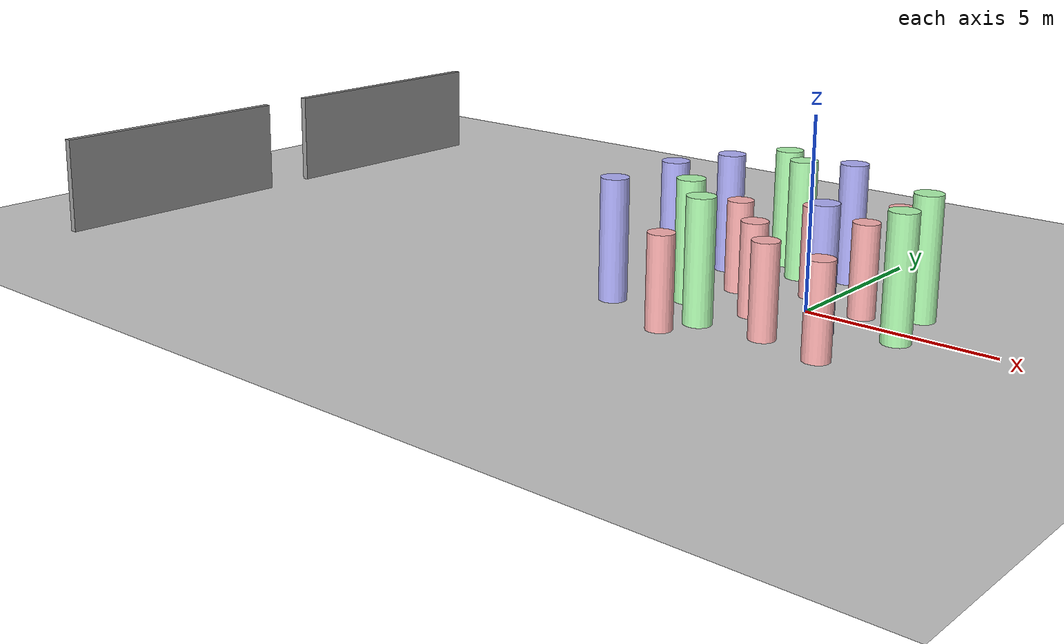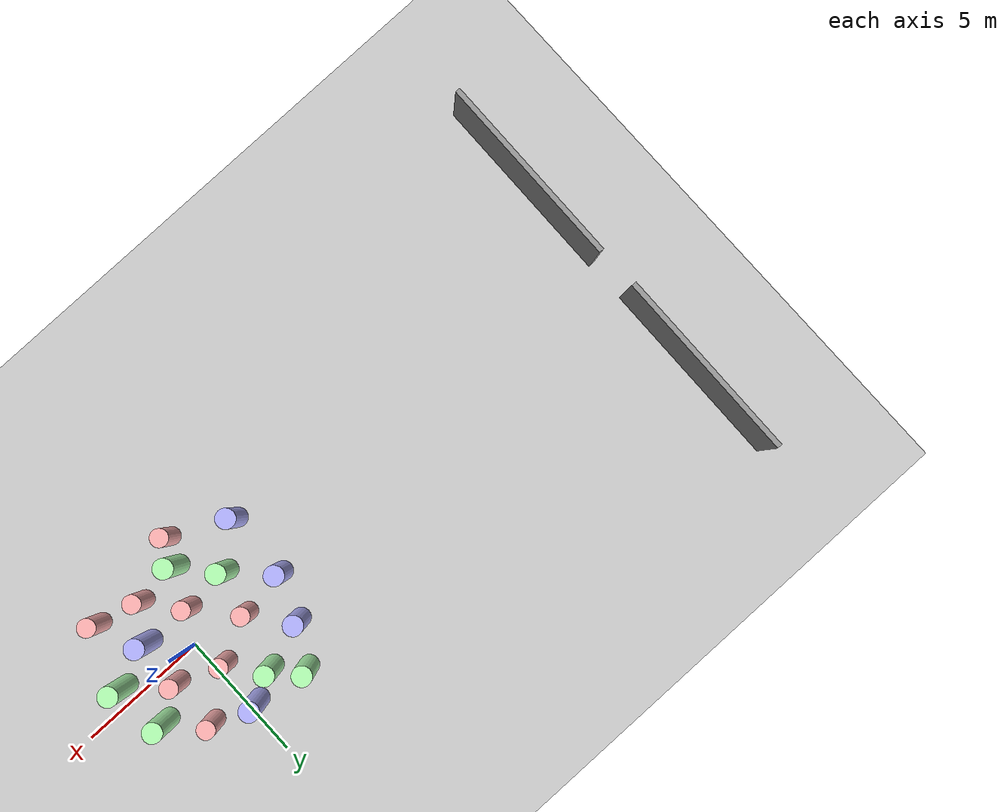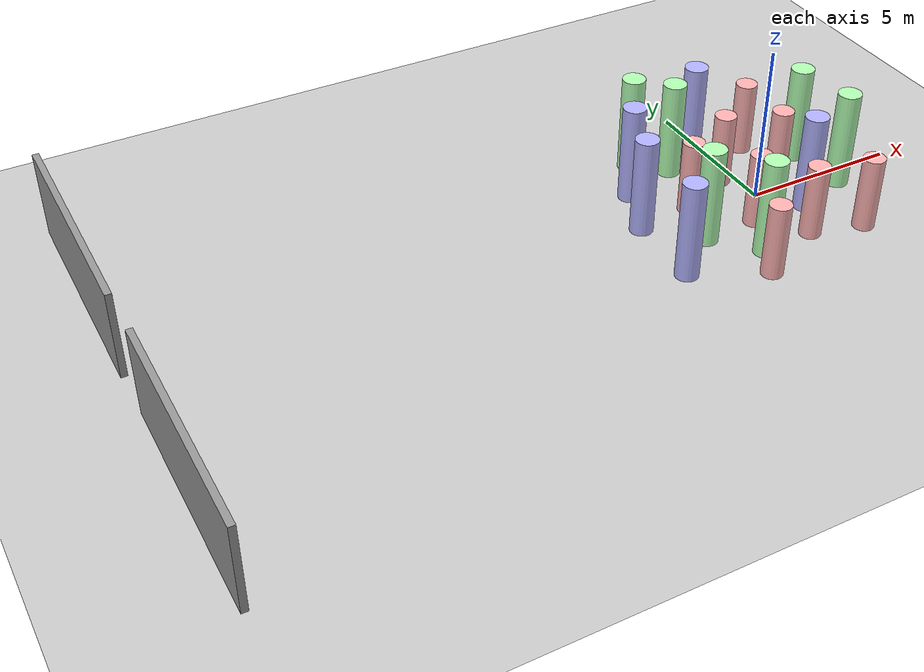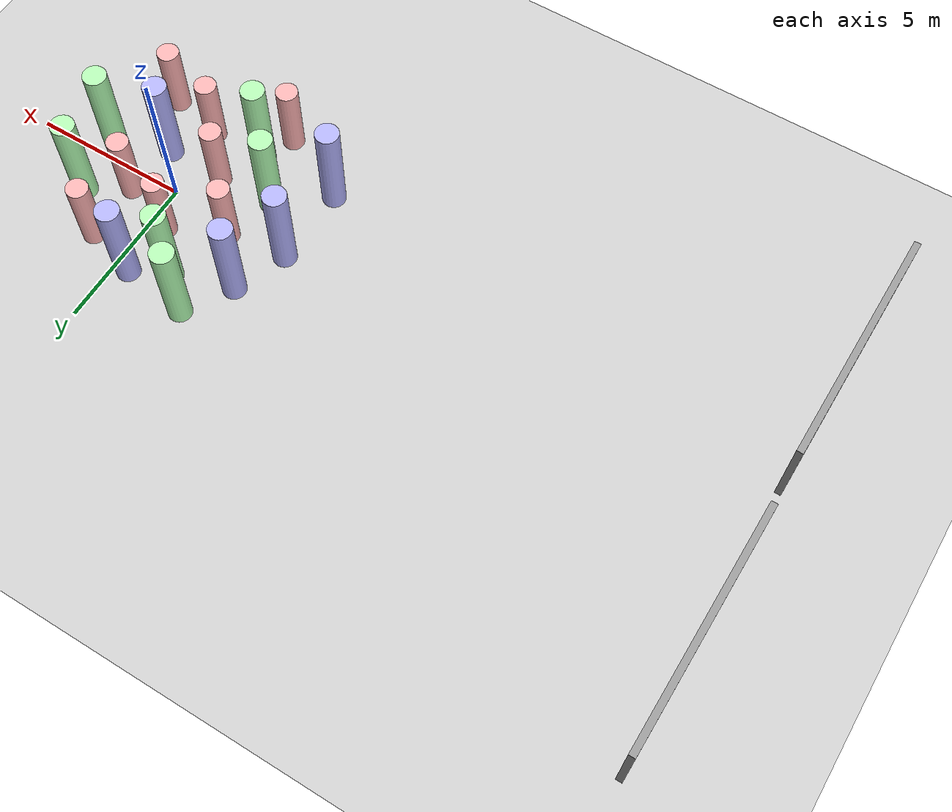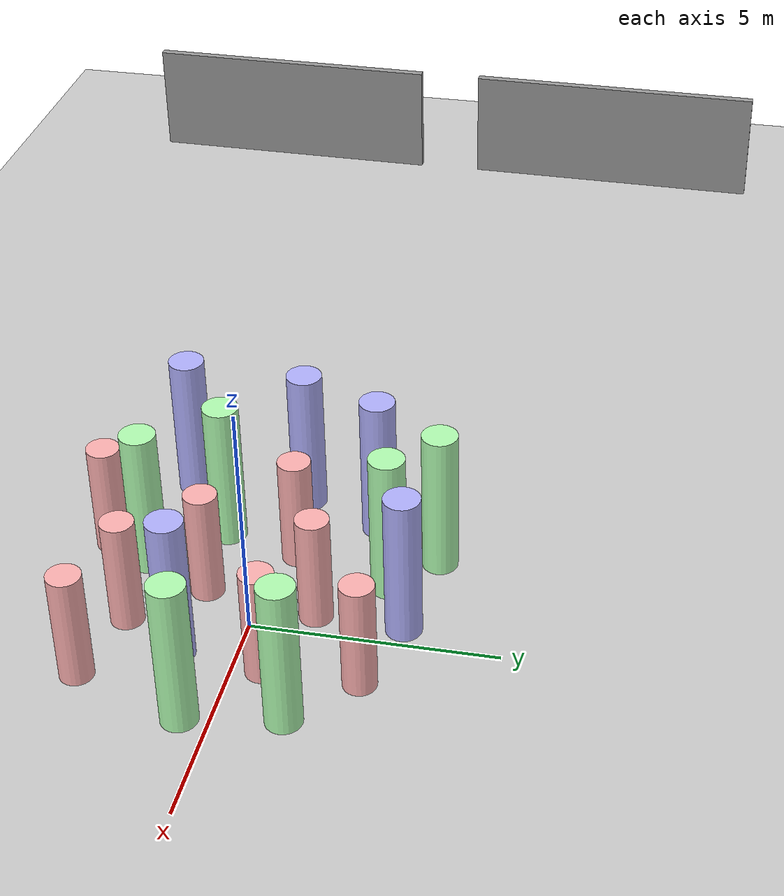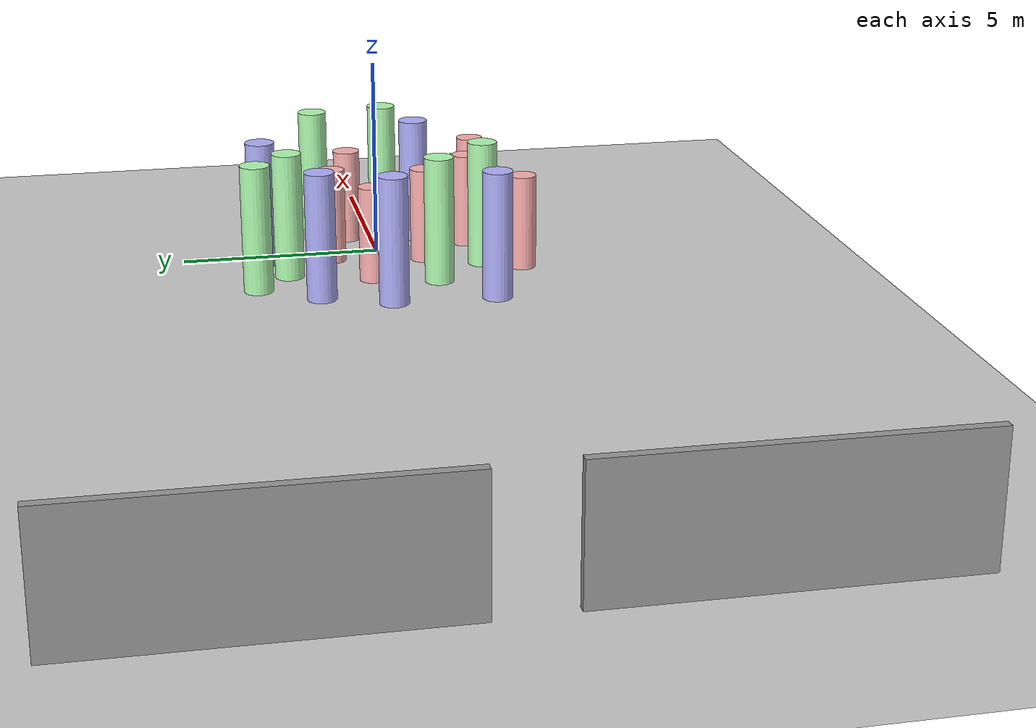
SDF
<sdf version="1.6">
 <world name="default">
  <plugin name="ros_interface_plugin" filename="librotors_gazebo_ros_interface_plugin.so"/>
  <model name="ground_plane">
   <static>1</static>
   <link name="link">
    <collision name="collision">
     <geometry><plane><normal>0 0 1</normal><size>100 100</size></plane></geometry>
     <surface><friction><ode><mu>100</mu><mu2>50</mu2></ode></friction></surface>
    </collision>
    <visual name="visual">
     <cast_shadows>0</cast_shadows>
     <geometry><plane><normal>0 0 1</normal><size>100 100</size></plane></geometry>
     <material>
      <script><uri>file://media/materials/scripts/gazebo.material</uri><name>Gazebo/Grey</name></script>
     </material>
    </visual>
   </link>
  </model>
  <light name="sun" type="directional">
   <pose>0 0 10 0 -0 0</pose>
   <diffuse>0.8 0.8 0.8 1</diffuse>
   <specular>0.2 0.2 0.2 1</specular>
   <attenuation>
    <range>1000</range>
    <constant>0.9</constant>
    <linear>0.01</linear>
    <quadratic>0.001</quadratic>
   </attenuation>
   <direction>-0.5 0.1 -0.9</direction>
  </light>
  <plugin name="ros_interface_plugin" filename="librotors_gazebo_ros_interface_plugin.so"/>
  <spherical_coordinates>
   <surface_model>EARTH_WGS84</surface_model>
   <latitude_deg>47.3667</latitude_deg>
   <longitude_deg>8.55</longitude_deg>
   <elevation>500</elevation>
   <heading_deg>0</heading_deg>
  </spherical_coordinates>
  <physics name="default_physics" default="0" type="ode">
   <ode>
    <solver>
     <type>quick</type>
     <iters>1000</iters>
     <sor>1.3</sor>
     <use_dynamic_moi_rescaling>0</use_dynamic_moi_rescaling>
    </solver>
    <constraints>
     <cfm>0</cfm>
     <erp>0.2</erp>
     <contact_max_correcting_vel>100</contact_max_correcting_vel>
     <contact_surface_layer>0.001</contact_surface_layer>
    </constraints>
   </ode>
   <max_step_size>0.01</max_step_size>
   <real_time_factor>1</real_time_factor>
   <real_time_update_rate>100</real_time_update_rate>
  </physics>
  <gravity>0 0 -9.8</gravity>
  <magnetic_field>6e-06 2.3e-05 -4.2e-05</magnetic_field>
  <atmosphere type="adiabatic"/>
  <scene><ambient>0.4 0.4 0.4 1</ambient><background>0.7 0.7 0.7 1</background><shadows>1</shadows></scene>
  <model name="unit_cylinder_blue">
   <link name="link_1">
    <pose>0.746146 -0.350774 -0.71216 0 0 -0.000199</pose>
    <inertial>
     <mass>1.76162</mass>
     <inertia><ixx>1.57891</ixx><ixy>0</ixy><ixz>0</ixz><iyy>1.57891</iyy><iyz>0</iyz><izz>0.120606</izz></inertia>
    </inertial>
    <visual name="visual">
     <geometry><cylinder><radius>0.370036</radius><length>3.2163</length></cylinder></geometry>
     <material>
      <lighting>1</lighting>
      <script><uri>file://media/materials/scripts/gazebo.material</uri><name>Gazebo/Grey</name></script>
      <ambient>0.3 0.3 1 1</ambient>
      <diffuse>0.7 0.7 1 1</diffuse>
      <specular>0 0 1 1</specular>
      <emissive>0 0 1 1</emissive>
      <shader type="vertex"><normal_map>__default__</normal_map></shader>
     </material>
    </visual>
    <collision name="collision">
     <geometry><cylinder><radius>0.370036</radius><length>3.21631</length></cylinder></geometry>
     <surface>
      <friction>
       <ode><mu>1</mu><mu2>1</mu2><fdir1>0 0 0</fdir1><slip1>0</slip1><slip2>0</slip2></ode>
       <torsional>
        <coefficient>1</coefficient>
        <patch_radius>0</patch_radius>
        <surface_radius>0</surface_radius>
        <use_patch_radius>1</use_patch_radius>
        <ode><slip>0</slip></ode>
       </torsional>
      </friction>
      <bounce><restitution_coefficient>0</restitution_coefficient><threshold>1e+06</threshold></bounce>
      <contact>
       <collide_without_contact>0</collide_without_contact>
       <collide_without_contact_bitmask>1</collide_without_contact_bitmask>
       <collide_bitmask>1</collide_bitmask>
       <ode>
        <soft_cfm>0</soft_cfm>
        <soft_erp>0.2</soft_erp>
        <kp>1e+13</kp>
        <kd>1</kd>
        <max_vel>0.01</max_vel>
        <min_depth>0</min_depth>
       </ode>
       <bullet>
        <split_impulse>1</split_impulse>
        <split_impulse_penetration_threshold>-0.01</split_impulse_penetration_threshold>
        <soft_cfm>0</soft_cfm>
        <soft_erp>0.2</soft_erp>
        <kp>1e+13</kp>
        <kd>1</kd>
       </bullet>
      </contact>
     </surface>
    </collision>
   </link>
   <static>0</static>
   <pose>-5.03358 -2.23329 2.31943 0 -0 0.261055</pose>
  </model>
  <model name="unit_cylinder_red">
   <link name="link">
    <inertial>
     <mass>1</mass>
     <inertia><ixx>0.145833</ixx><ixy>0</ixy><ixz>0</ixz><iyy>0.145833</iyy><iyz>0</iyz><izz>0.125</izz></inertia>
    </inertial>
    <visual name="visual">
     <geometry><cylinder><radius>0.342753</radius><length>2.42433</length></cylinder></geometry>
     <material>
      <script><name>Gazebo/Grey</name><uri>file://media/materials/scripts/gazebo.material</uri></script>
      <ambient>1 0.3 0.3 1</ambient>
      <diffuse>1 0.7 0.7 1</diffuse>
      <specular>1 0.01 0.01 1</specular>
      <emissive>1 0 0 1</emissive>
      <shader type="vertex"><normal_map>__default__</normal_map></shader>
     </material>
    </visual>
    <collision name="collision">
     <geometry><cylinder><radius>0.342753</radius><length>2.42433</length></cylinder></geometry>
     <surface>
      <friction>
       <ode><mu>1</mu><mu2>1</mu2><fdir1>0 0 0</fdir1><slip1>0</slip1><slip2>0</slip2></ode>
       <torsional>
        <coefficient>1</coefficient>
        <patch_radius>0</patch_radius>
        <surface_radius>0</surface_radius>
        <use_patch_radius>1</use_patch_radius>
        <ode><slip>0</slip></ode>
       </torsional>
      </friction>
      <bounce><restitution_coefficient>0</restitution_coefficient><threshold>1e+06</threshold></bounce>
      <contact>
       <collide_without_contact>0</collide_without_contact>
       <collide_without_contact_bitmask>1</collide_without_contact_bitmask>
       <collide_bitmask>1</collide_bitmask>
       <ode>
        <soft_cfm>0</soft_cfm>
        <soft_erp>0.2</soft_erp>
        <kp>1e+13</kp>
        <kd>1</kd>
        <max_vel>0.01</max_vel>
        <min_depth>0</min_depth>
       </ode>
       <bullet>
        <split_impulse>1</split_impulse>
        <split_impulse_penetration_threshold>-0.01</split_impulse_penetration_threshold>
        <soft_cfm>0</soft_cfm>
        <soft_erp>0.2</soft_erp>
        <kp>1e+13</kp>
        <kd>1</kd>
       </bullet>
      </contact>
     </surface>
    </collision>
   </link>
   <static>0</static>
   <pose>1.92474 -2.85136 1.21128 0 -0 0.046407</pose>
  </model>
  <model name="grey_wall_clone_6_clone_1_clone_0">
   <static>1</static>
   <link name="link">
    <pose>0 0 1.4 0 -0 0</pose>
    <collision name="collision"><geometry><box><size>7.5 0.2 2.8</size></box></geometry></collision>
    <visual name="visual">
     <cast_shadows>0</cast_shadows>
     <geometry><box><size>7.5 0.2 2.8</size></box></geometry>
     <material>
      <script>
       <uri>model://grey_wall/materials/scripts</uri>
       <uri>model://grey_wall/materials/textures</uri>
       <name>vrc/grey_wall</name>
      </script>
     </material>
    </visual>
   </link>
   <pose>-19.9684 4.75312 0 0 -0 1.55927</pose>
  </model>
  <model name="grey_wall_clone_6_clone_1_clone_1">
   <static>1</static>
   <link name="link">
    <pose>0 0 1.4 0 -0 0</pose>
    <collision name="collision"><geometry><box><size>7.5 0.2 2.8</size></box></geometry></collision>
    <visual name="visual">
     <cast_shadows>0</cast_shadows>
     <geometry><box><size>7.5 0.2 2.8</size></box></geometry>
     <material>
      <script>
       <uri>model://grey_wall/materials/scripts</uri>
       <uri>model://grey_wall/materials/textures</uri>
       <name>vrc/grey_wall</name>
      </script>
     </material>
    </visual>
   </link>
   <pose>-20.0078 -4.33424 0 0 -0 1.55927</pose>
  </model>
  <model name="unit_cylinder_red_clone_5_clone">
   <link name="link">
    <inertial>
     <mass>1</mass>
     <inertia><ixx>0.145833</ixx><ixy>0</ixy><ixz>0</ixz><iyy>0.145833</iyy><iyz>0</iyz><izz>0.125</izz></inertia>
    </inertial>
    <visual name="visual">
     <geometry><cylinder><radius>0.342753</radius><length>2.42433</length></cylinder></geometry>
     <material>
      <script><name>Gazebo/Grey</name><uri>file://media/materials/scripts/gazebo.material</uri></script>
      <ambient>1 0.3 0.3 1</ambient>
      <diffuse>1 0.7 0.7 1</diffuse>
      <specular>1 0.01 0.01 1</specular>
      <emissive>1 0 0 1</emissive>
      <shader type="vertex"><normal_map>__default__</normal_map></shader>
     </material>
    </visual>
    <collision name="collision">
     <geometry><cylinder><radius>0.342753</radius><length>2.42433</length></cylinder></geometry>
     <surface>
      <friction>
       <ode><mu>1</mu><mu2>1</mu2><fdir1>0 0 0</fdir1><slip1>0</slip1><slip2>0</slip2></ode>
       <torsional>
        <coefficient>1</coefficient>
        <patch_radius>0</patch_radius>
        <surface_radius>0</surface_radius>
        <use_patch_radius>1</use_patch_radius>
        <ode><slip>0</slip></ode>
       </torsional>
      </friction>
      <bounce><restitution_coefficient>0</restitution_coefficient><threshold>1e+06</threshold></bounce>
      <contact>
       <collide_without_contact>0</collide_without_contact>
       <collide_without_contact_bitmask>1</collide_without_contact_bitmask>
       <collide_bitmask>1</collide_bitmask>
       <ode>
        <soft_cfm>0</soft_cfm>
        <soft_erp>0.2</soft_erp>
        <kp>1e+13</kp>
        <kd>1</kd>
        <max_vel>0.01</max_vel>
        <min_depth>0</min_depth>
       </ode>
       <bullet>
        <split_impulse>1</split_impulse>
        <split_impulse_penetration_threshold>-0.01</split_impulse_penetration_threshold>
        <soft_cfm>0</soft_cfm>
        <soft_erp>0.2</soft_erp>
        <kp>1e+13</kp>
        <kd>1</kd>
       </bullet>
      </contact>
     </surface>
    </collision>
   </link>
   <static>0</static>
   <pose>-1.98438 -3.48582 1.21128 0 -0 0.046407</pose>
  </model>
  <model name="unit_cylinder_green_clone_1_clone_5_clone_0">
   <link name="link_1">
    <pose>0.746146 -0.350774 -0.71216 0 0 -0.000199</pose>
    <inertial>
     <mass>1.76162</mass>
     <inertia><ixx>1.57891</ixx><ixy>0</ixy><ixz>0</ixz><iyy>1.57891</iyy><iyz>0</iyz><izz>0.120606</izz></inertia>
    </inertial>
    <visual name="visual">
     <geometry><cylinder><radius>0.370036</radius><length>3.2163</length></cylinder></geometry>
     <material>
      <lighting>1</lighting>
      <script><uri>file://media/materials/scripts/gazebo.material</uri><name>Gazebo/Grey</name></script>
      <ambient>0.3 1 0.3 1</ambient>
      <diffuse>0.7 1 0.7 1</diffuse>
      <specular>0.01 1 0.01 1</specular>
      <emissive>0 1 0 1</emissive>
      <shader type="vertex"><normal_map>__default__</normal_map></shader>
     </material>
    </visual>
    <collision name="collision">
     <geometry><cylinder><radius>0.370036</radius><length>3.21631</length></cylinder></geometry>
     <surface>
      <friction>
       <ode><mu>1</mu><mu2>1</mu2><fdir1>0 0 0</fdir1><slip1>0</slip1><slip2>0</slip2></ode>
       <torsional>
        <coefficient>1</coefficient>
        <patch_radius>0</patch_radius>
        <surface_radius>0</surface_radius>
        <use_patch_radius>1</use_patch_radius>
        <ode><slip>0</slip></ode>
       </torsional>
      </friction>
      <bounce><restitution_coefficient>0</restitution_coefficient><threshold>1e+06</threshold></bounce>
      <contact>
       <collide_without_contact>0</collide_without_contact>
       <collide_without_contact_bitmask>1</collide_without_contact_bitmask>
       <collide_bitmask>1</collide_bitmask>
       <ode>
        <soft_cfm>0</soft_cfm>
        <soft_erp>0.2</soft_erp>
        <kp>1e+13</kp>
        <kd>1</kd>
        <max_vel>0.01</max_vel>
        <min_depth>0</min_depth>
       </ode>
       <bullet>
        <split_impulse>1</split_impulse>
        <split_impulse_penetration_threshold>-0.01</split_impulse_penetration_threshold>
        <soft_cfm>0</soft_cfm>
        <soft_erp>0.2</soft_erp>
        <kp>1e+13</kp>
        <kd>1</kd>
       </bullet>
      </contact>
     </surface>
    </collision>
   </link>
   <static>0</static>
   <pose>-3.33801 3.66508 2.31943 0 0 -0.004811</pose>
  </model>
  <model name="unit_cylinder_green_clone_1_clone_5_clone_1">
   <link name="link_1">
    <pose>0.746146 -0.350774 -0.71216 0 0 -0.000199</pose>
    <inertial>
     <mass>1.76162</mass>
     <inertia><ixx>1.57891</ixx><ixy>0</ixy><ixz>0</ixz><iyy>1.57891</iyy><iyz>0</iyz><izz>0.120606</izz></inertia>
    </inertial>
    <visual name="visual">
     <geometry><cylinder><radius>0.370036</radius><length>3.2163</length></cylinder></geometry>
     <material>
      <lighting>1</lighting>
      <script><uri>file://media/materials/scripts/gazebo.material</uri><name>Gazebo/Grey</name></script>
      <ambient>0.3 1 0.3 1</ambient>
      <diffuse>0.7 1 0.7 1</diffuse>
      <specular>0.01 1 0.01 1</specular>
      <emissive>0 1 0 1</emissive>
      <shader type="vertex"><normal_map>__default__</normal_map></shader>
     </material>
    </visual>
    <collision name="collision">
     <geometry><cylinder><radius>0.370036</radius><length>3.21631</length></cylinder></geometry>
     <surface>
      <friction>
       <ode><mu>1</mu><mu2>1</mu2><fdir1>0 0 0</fdir1><slip1>0</slip1><slip2>0</slip2></ode>
       <torsional>
        <coefficient>1</coefficient>
        <patch_radius>0</patch_radius>
        <surface_radius>0</surface_radius>
        <use_patch_radius>1</use_patch_radius>
        <ode><slip>0</slip></ode>
       </torsional>
      </friction>
      <bounce><restitution_coefficient>0</restitution_coefficient><threshold>1e+06</threshold></bounce>
      <contact>
       <collide_without_contact>0</collide_without_contact>
       <collide_without_contact_bitmask>1</collide_without_contact_bitmask>
       <collide_bitmask>1</collide_bitmask>
       <ode>
        <soft_cfm>0</soft_cfm>
        <soft_erp>0.2</soft_erp>
        <kp>1e+13</kp>
        <kd>1</kd>
        <max_vel>0.01</max_vel>
        <min_depth>0</min_depth>
       </ode>
       <bullet>
        <split_impulse>1</split_impulse>
        <split_impulse_penetration_threshold>-0.01</split_impulse_penetration_threshold>
        <soft_cfm>0</soft_cfm>
        <soft_erp>0.2</soft_erp>
        <kp>1e+13</kp>
        <kd>1</kd>
       </bullet>
      </contact>
     </surface>
    </collision>
   </link>
   <static>0</static>
   <pose>1.97627 -0.21093 2.31943 0 0 -0.004811</pose>
  </model>
  <model name="unit_cylinder_blue_clone_4_clone_clone_clone_clone">
   <link name="link_1">
    <pose>0.746146 -0.350774 -0.71216 0 0 -0.000199</pose>
    <inertial>
     <mass>1.76162</mass>
     <inertia><ixx>1.57891</ixx><ixy>0</ixy><ixz>0</ixz><iyy>1.57891</iyy><iyz>0</iyz><izz>0.120606</izz></inertia>
    </inertial>
    <visual name="visual">
     <geometry><cylinder><radius>0.370036</radius><length>3.2163</length></cylinder></geometry>
     <material>
      <lighting>1</lighting>
      <script><uri>file://media/materials/scripts/gazebo.material</uri><name>Gazebo/Grey</name></script>
      <ambient>0.3 0.3 1 1</ambient>
      <diffuse>0.7 0.7 1 1</diffuse>
      <specular>0 0 1 1</specular>
      <emissive>0 0 1 1</emissive>
      <shader type="vertex"><normal_map>__default__</normal_map></shader>
     </material>
    </visual>
    <collision name="collision">
     <geometry><cylinder><radius>0.370036</radius><length>3.21631</length></cylinder></geometry>
     <surface>
      <friction>
       <ode><mu>1</mu><mu2>1</mu2><fdir1>0 0 0</fdir1><slip1>0</slip1><slip2>0</slip2></ode>
       <torsional>
        <coefficient>1</coefficient>
        <patch_radius>0</patch_radius>
        <surface_radius>0</surface_radius>
        <use_patch_radius>1</use_patch_radius>
        <ode><slip>0</slip></ode>
       </torsional>
      </friction>
      <bounce><restitution_coefficient>0</restitution_coefficient><threshold>1e+06</threshold></bounce>
      <contact>
       <collide_without_contact>0</collide_without_contact>
       <collide_without_contact_bitmask>1</collide_without_contact_bitmask>
       <collide_bitmask>1</collide_bitmask>
       <ode>
        <soft_cfm>0</soft_cfm>
        <soft_erp>0.2</soft_erp>
        <kp>1e+13</kp>
        <kd>1</kd>
        <max_vel>0.01</max_vel>
        <min_depth>0</min_depth>
       </ode>
       <bullet>
        <split_impulse>1</split_impulse>
        <split_impulse_penetration_threshold>-0.01</split_impulse_penetration_threshold>
        <soft_cfm>0</soft_cfm>
        <soft_erp>0.2</soft_erp>
        <kp>1e+13</kp>
        <kd>1</kd>
       </bullet>
      </contact>
     </surface>
    </collision>
   </link>
   <static>0</static>
   <pose>-1.28645 3.14459 2.31943 0 -0 0.261396</pose>
  </model>
  <model name="unit_cylinder_blue_clone_4_clone_clone_0">
   <link name="link_1">
    <pose>0.746146 -0.350774 -0.71216 0 0 -0.000199</pose>
    <inertial>
     <mass>1.76162</mass>
     <inertia><ixx>1.57891</ixx><ixy>0</ixy><ixz>0</ixz><iyy>1.57891</iyy><iyz>0</iyz><izz>0.120606</izz></inertia>
    </inertial>
    <visual name="visual">
     <geometry><cylinder><radius>0.370036</radius><length>3.2163</length></cylinder></geometry>
     <material>
      <lighting>1</lighting>
      <script><uri>file://media/materials/scripts/gazebo.material</uri><name>Gazebo/Grey</name></script>
      <ambient>0.3 0.3 1 1</ambient>
      <diffuse>0.7 0.7 1 1</diffuse>
      <specular>0 0 1 1</specular>
      <emissive>0 0 1 1</emissive>
      <shader type="vertex"><normal_map>__default__</normal_map></shader>
     </material>
    </visual>
    <collision name="collision">
     <geometry><cylinder><radius>0.370036</radius><length>3.21631</length></cylinder></geometry>
     <surface>
      <friction>
       <ode><mu>1</mu><mu2>1</mu2><fdir1>0 0 0</fdir1><slip1>0</slip1><slip2>0</slip2></ode>
       <torsional>
        <coefficient>1</coefficient>
        <patch_radius>0</patch_radius>
        <surface_radius>0</surface_radius>
        <use_patch_radius>1</use_patch_radius>
        <ode><slip>0</slip></ode>
       </torsional>
      </friction>
      <bounce><restitution_coefficient>0</restitution_coefficient><threshold>1e+06</threshold></bounce>
      <contact>
       <collide_without_contact>0</collide_without_contact>
       <collide_without_contact_bitmask>1</collide_without_contact_bitmask>
       <collide_bitmask>1</collide_bitmask>
       <ode>
        <soft_cfm>0</soft_cfm>
        <soft_erp>0.2</soft_erp>
        <kp>1e+13</kp>
        <kd>1</kd>
        <max_vel>0.01</max_vel>
        <min_depth>0</min_depth>
       </ode>
       <bullet>
        <split_impulse>1</split_impulse>
        <split_impulse_penetration_threshold>-0.01</split_impulse_penetration_threshold>
        <soft_cfm>0</soft_cfm>
        <soft_erp>0.2</soft_erp>
        <kp>1e+13</kp>
        <kd>1</kd>
       </bullet>
      </contact>
     </surface>
    </collision>
   </link>
   <static>0</static>
   <pose>-4.96026 0.309048 2.31943 0 -0 0.261396</pose>
  </model>
  <model name="unit_cylinder_blue_clone_4_clone_clone_clone_clone_clone">
   <link name="link_1">
    <pose>0.746146 -0.350774 -0.71216 0 0 -0.000199</pose>
    <inertial>
     <mass>1.76162</mass>
     <inertia><ixx>1.57891</ixx><ixy>0</ixy><ixz>0</ixz><iyy>1.57891</iyy><iyz>0</iyz><izz>0.120606</izz></inertia>
    </inertial>
    <visual name="visual">
     <geometry><cylinder><radius>0.370036</radius><length>3.2163</length></cylinder></geometry>
     <material>
      <lighting>1</lighting>
      <script><uri>file://media/materials/scripts/gazebo.material</uri><name>Gazebo/Grey</name></script>
      <ambient>0.3 0.3 1 1</ambient>
      <diffuse>0.7 0.7 1 1</diffuse>
      <specular>0 0 1 1</specular>
      <emissive>0 0 1 1</emissive>
      <shader type="vertex"><normal_map>__default__</normal_map></shader>
     </material>
    </visual>
    <collision name="collision">
     <geometry><cylinder><radius>0.370036</radius><length>3.21631</length></cylinder></geometry>
     <surface>
      <friction>
       <ode><mu>1</mu><mu2>1</mu2><fdir1>0 0 0</fdir1><slip1>0</slip1><slip2>0</slip2></ode>
       <torsional>
        <coefficient>1</coefficient>
        <patch_radius>0</patch_radius>
        <surface_radius>0</surface_radius>
        <use_patch_radius>1</use_patch_radius>
        <ode><slip>0</slip></ode>
       </torsional>
      </friction>
      <bounce><restitution_coefficient>0</restitution_coefficient><threshold>1e+06</threshold></bounce>
      <contact>
       <collide_without_contact>0</collide_without_contact>
       <collide_without_contact_bitmask>1</collide_without_contact_bitmask>
       <collide_bitmask>1</collide_bitmask>
       <ode>
        <soft_cfm>0</soft_cfm>
        <soft_erp>0.2</soft_erp>
        <kp>1e+13</kp>
        <kd>1</kd>
        <max_vel>0.01</max_vel>
        <min_depth>0</min_depth>
       </ode>
       <bullet>
        <split_impulse>1</split_impulse>
        <split_impulse_penetration_threshold>-0.01</split_impulse_penetration_threshold>
        <soft_cfm>0</soft_cfm>
        <soft_erp>0.2</soft_erp>
        <kp>1e+13</kp>
        <kd>1</kd>
       </bullet>
      </contact>
     </surface>
    </collision>
   </link>
   <static>0</static>
   <pose>-4.31318 1.99369 2.31943 0 -0 0.261396</pose>
  </model>
  <model name="unit_cylinder_green_clone_1_clone_5_clone_0_clone">
   <link name="link_1">
    <pose>0.746146 -0.350774 -0.71216 0 0 -0.000199</pose>
    <inertial>
     <mass>1.76162</mass>
     <inertia><ixx>1.57891</ixx><ixy>0</ixy><ixz>0</ixz><iyy>1.57891</iyy><iyz>0</iyz><izz>0.120606</izz></inertia>
    </inertial>
    <visual name="visual">
     <geometry><cylinder><radius>0.370036</radius><length>3.2163</length></cylinder></geometry>
     <material>
      <lighting>1</lighting>
      <script><uri>file://media/materials/scripts/gazebo.material</uri><name>Gazebo/Grey</name></script>
      <ambient>0.3 1 0.3 1</ambient>
      <diffuse>0.7 1 0.7 1</diffuse>
      <specular>0.01 1 0.01 1</specular>
      <emissive>0 1 0 1</emissive>
      <shader type="vertex"><normal_map>__default__</normal_map></shader>
     </material>
    </visual>
    <collision name="collision">
     <geometry><cylinder><radius>0.370036</radius><length>3.21631</length></cylinder></geometry>
     <surface>
      <friction>
       <ode><mu>1</mu><mu2>1</mu2><fdir1>0 0 0</fdir1><slip1>0</slip1><slip2>0</slip2></ode>
       <torsional>
        <coefficient>1</coefficient>
        <patch_radius>0</patch_radius>
        <surface_radius>0</surface_radius>
        <use_patch_radius>1</use_patch_radius>
        <ode><slip>0</slip></ode>
       </torsional>
      </friction>
      <bounce><restitution_coefficient>0</restitution_coefficient><threshold>1e+06</threshold></bounce>
      <contact>
       <collide_without_contact>0</collide_without_contact>
       <collide_without_contact_bitmask>1</collide_without_contact_bitmask>
       <collide_bitmask>1</collide_bitmask>
       <ode>
        <soft_cfm>0</soft_cfm>
        <soft_erp>0.2</soft_erp>
        <kp>1e+13</kp>
        <kd>1</kd>
        <max_vel>0.01</max_vel>
        <min_depth>0</min_depth>
       </ode>
       <bullet>
        <split_impulse>1</split_impulse>
        <split_impulse_penetration_threshold>-0.01</split_impulse_penetration_threshold>
        <soft_cfm>0</soft_cfm>
        <soft_erp>0.2</soft_erp>
        <kp>1e+13</kp>
        <kd>1</kd>
       </bullet>
      </contact>
     </surface>
    </collision>
   </link>
   <static>0</static>
   <pose>-3.46535 -0.849432 2.31943 0 0 -0.004811</pose>
  </model>
  <model name="unit_cylinder_red_clone_5_clone_0_clone">
   <link name="link">
    <inertial>
     <mass>1</mass>
     <inertia><ixx>0.145833</ixx><ixy>0</ixy><ixz>0</ixz><iyy>0.145833</iyy><iyz>0</iyz><izz>0.125</izz></inertia>
    </inertial>
    <visual name="visual">
     <geometry><cylinder><radius>0.342753</radius><length>2.42433</length></cylinder></geometry>
     <material>
      <script><name>Gazebo/Grey</name><uri>file://media/materials/scripts/gazebo.material</uri></script>
      <ambient>1 0.3 0.3 1</ambient>
      <diffuse>1 0.7 0.7 1</diffuse>
      <specular>1 0.01 0.01 1</specular>
      <emissive>1 0 0 1</emissive>
      <shader type="vertex"><normal_map>__default__</normal_map></shader>
     </material>
    </visual>
    <collision name="collision">
     <geometry><cylinder><radius>0.342753</radius><length>2.42433</length></cylinder></geometry>
     <surface>
      <friction>
       <ode><mu>1</mu><mu2>1</mu2><fdir1>0 0 0</fdir1><slip1>0</slip1><slip2>0</slip2></ode>
       <torsional>
        <coefficient>1</coefficient>
        <patch_radius>0</patch_radius>
        <surface_radius>0</surface_radius>
        <use_patch_radius>1</use_patch_radius>
        <ode><slip>0</slip></ode>
       </torsional>
      </friction>
      <bounce><restitution_coefficient>0</restitution_coefficient><threshold>1e+06</threshold></bounce>
      <contact>
       <collide_without_contact>0</collide_without_contact>
       <collide_without_contact_bitmask>1</collide_without_contact_bitmask>
       <collide_bitmask>1</collide_bitmask>
       <ode>
        <soft_cfm>0</soft_cfm>
        <soft_erp>0.2</soft_erp>
        <kp>1e+13</kp>
        <kd>1</kd>
        <max_vel>0.01</max_vel>
        <min_depth>0</min_depth>
       </ode>
       <bullet>
        <split_impulse>1</split_impulse>
        <split_impulse_penetration_threshold>-0.01</split_impulse_penetration_threshold>
        <soft_cfm>0</soft_cfm>
        <soft_erp>0.2</soft_erp>
        <kp>1e+13</kp>
        <kd>1</kd>
       </bullet>
      </contact>
     </surface>
    </collision>
   </link>
   <static>0</static>
   <pose>-0.532957 1.21683 1.21128 0 -0 0.046407</pose>
  </model>
  <model name="unit_cylinder_red_clone_5_clone_0_clone_clone">
   <link name="link">
    <inertial>
     <mass>1</mass>
     <inertia><ixx>0.145833</ixx><ixy>0</ixy><ixz>0</ixz><iyy>0.145833</iyy><iyz>0</iyz><izz>0.125</izz></inertia>
    </inertial>
    <visual name="visual">
     <geometry><cylinder><radius>0.342753</radius><length>2.42433</length></cylinder></geometry>
     <material>
      <script><name>Gazebo/Grey</name><uri>file://media/materials/scripts/gazebo.material</uri></script>
      <ambient>1 0.3 0.3 1</ambient>
      <diffuse>1 0.7 0.7 1</diffuse>
      <specular>1 0.01 0.01 1</specular>
      <emissive>1 0 0 1</emissive>
      <shader type="vertex"><normal_map>__default__</normal_map></shader>
     </material>
    </visual>
    <collision name="collision">
     <geometry><cylinder><radius>0.342753</radius><length>2.42433</length></cylinder></geometry>
     <surface>
      <friction>
       <ode><mu>1</mu><mu2>1</mu2><fdir1>0 0 0</fdir1><slip1>0</slip1><slip2>0</slip2></ode>
       <torsional>
        <coefficient>1</coefficient>
        <patch_radius>0</patch_radius>
        <surface_radius>0</surface_radius>
        <use_patch_radius>1</use_patch_radius>
        <ode><slip>0</slip></ode>
       </torsional>
      </friction>
      <bounce><restitution_coefficient>0</restitution_coefficient><threshold>1e+06</threshold></bounce>
      <contact>
       <collide_without_contact>0</collide_without_contact>
       <collide_without_contact_bitmask>1</collide_without_contact_bitmask>
       <collide_bitmask>1</collide_bitmask>
       <ode>
        <soft_cfm>0</soft_cfm>
        <soft_erp>0.2</soft_erp>
        <kp>1e+13</kp>
        <kd>1</kd>
        <max_vel>0.01</max_vel>
        <min_depth>0</min_depth>
       </ode>
       <bullet>
        <split_impulse>1</split_impulse>
        <split_impulse_penetration_threshold>-0.01</split_impulse_penetration_threshold>
        <soft_cfm>0</soft_cfm>
        <soft_erp>0.2</soft_erp>
        <kp>1e+13</kp>
        <kd>1</kd>
       </bullet>
      </contact>
     </surface>
    </collision>
   </link>
   <static>0</static>
   <pose>-2.26931 0.408386 1.21128 0 -0 0.046407</pose>
  </model>
  <model name="unit_cylinder_red_clone_5_clone_0_clone_clone_0">
   <link name="link">
    <inertial>
     <mass>1</mass>
     <inertia><ixx>0.145833</ixx><ixy>0</ixy><ixz>0</ixz><iyy>0.145833</iyy><iyz>0</iyz><izz>0.125</izz></inertia>
    </inertial>
    <visual name="visual">
     <geometry><cylinder><radius>0.342753</radius><length>2.42433</length></cylinder></geometry>
     <material>
      <script><name>Gazebo/Grey</name><uri>file://media/materials/scripts/gazebo.material</uri></script>
      <ambient>1 0.3 0.3 1</ambient>
      <diffuse>1 0.7 0.7 1</diffuse>
      <specular>1 0.01 0.01 1</specular>
      <emissive>1 0 0 1</emissive>
      <shader type="vertex"><normal_map>__default__</normal_map></shader>
     </material>
    </visual>
    <collision name="collision">
     <geometry><cylinder><radius>0.342753</radius><length>2.42433</length></cylinder></geometry>
     <surface>
      <friction>
       <ode><mu>1</mu><mu2>1</mu2><fdir1>0 0 0</fdir1><slip1>0</slip1><slip2>0</slip2></ode>
       <torsional>
        <coefficient>1</coefficient>
        <patch_radius>0</patch_radius>
        <surface_radius>0</surface_radius>
        <use_patch_radius>1</use_patch_radius>
        <ode><slip>0</slip></ode>
       </torsional>
      </friction>
      <bounce><restitution_coefficient>0</restitution_coefficient><threshold>1e+06</threshold></bounce>
      <contact>
       <collide_without_contact>0</collide_without_contact>
       <collide_without_contact_bitmask>1</collide_without_contact_bitmask>
       <collide_bitmask>1</collide_bitmask>
       <ode>
        <soft_cfm>0</soft_cfm>
        <soft_erp>0.2</soft_erp>
        <kp>1e+13</kp>
        <kd>1</kd>
        <max_vel>0.01</max_vel>
        <min_depth>0</min_depth>
       </ode>
       <bullet>
        <split_impulse>1</split_impulse>
        <split_impulse_penetration_threshold>-0.01</split_impulse_penetration_threshold>
        <soft_cfm>0</soft_cfm>
        <soft_erp>0.2</soft_erp>
        <kp>1e+13</kp>
        <kd>1</kd>
       </bullet>
      </contact>
     </surface>
    </collision>
   </link>
   <static>0</static>
   <pose>-0.886586 -1.11403 1.21128 0 -0 0.046407</pose>
  </model>
  <model name="unit_cylinder_blue_clone">
   <link name="link_1">
    <pose>0.746146 -0.350774 -0.71216 0 0 -0.000199</pose>
    <inertial>
     <mass>1.76162</mass>
     <inertia><ixx>1.57891</ixx><ixy>0</ixy><ixz>0</ixz><iyy>1.57891</iyy><iyz>0</iyz><izz>0.120606</izz></inertia>
    </inertial>
    <visual name="visual">
     <geometry><cylinder><radius>0.370036</radius><length>3.2163</length></cylinder></geometry>
     <material>
      <lighting>1</lighting>
      <script><uri>file://media/materials/scripts/gazebo.material</uri><name>Gazebo/Grey</name></script>
      <ambient>0.3 0.3 1 1</ambient>
      <diffuse>0.7 0.7 1 1</diffuse>
      <specular>0 0 1 1</specular>
      <emissive>0 0 1 1</emissive>
      <shader type="vertex"><normal_map>__default__</normal_map></shader>
     </material>
    </visual>
    <collision name="collision">
     <geometry><cylinder><radius>0.370036</radius><length>3.21631</length></cylinder></geometry>
     <surface>
      <friction>
       <ode><mu>1</mu><mu2>1</mu2><fdir1>0 0 0</fdir1><slip1>0</slip1><slip2>0</slip2></ode>
       <torsional>
        <coefficient>1</coefficient>
        <patch_radius>0</patch_radius>
        <surface_radius>0</surface_radius>
        <use_patch_radius>1</use_patch_radius>
        <ode><slip>0</slip></ode>
       </torsional>
      </friction>
      <bounce><restitution_coefficient>0</restitution_coefficient><threshold>1e+06</threshold></bounce>
      <contact>
       <collide_without_contact>0</collide_without_contact>
       <collide_without_contact_bitmask>1</collide_without_contact_bitmask>
       <collide_bitmask>1</collide_bitmask>
       <ode>
        <soft_cfm>0</soft_cfm>
        <soft_erp>0.2</soft_erp>
        <kp>1e+13</kp>
        <kd>1</kd>
        <max_vel>0.01</max_vel>
        <min_depth>0</min_depth>
       </ode>
       <bullet>
        <split_impulse>1</split_impulse>
        <split_impulse_penetration_threshold>-0.01</split_impulse_penetration_threshold>
        <soft_cfm>0</soft_cfm>
        <soft_erp>0.2</soft_erp>
        <kp>1e+13</kp>
        <kd>1</kd>
       </bullet>
      </contact>
     </surface>
    </collision>
   </link>
   <static>0</static>
   <pose>0.192224 -1.01536 2.31943 0 -0 0.261055</pose>
  </model>
  <model name="unit_cylinder_red_clone_3_clone_3_clone_clone">
   <link name="link">
    <inertial>
     <mass>1</mass>
     <inertia><ixx>0.145833</ixx><ixy>0</ixy><ixz>0</ixz><iyy>0.145833</iyy><iyz>0</iyz><izz>0.125</izz></inertia>
    </inertial>
    <visual name="visual">
     <geometry><cylinder><radius>0.342753</radius><length>2.42433</length></cylinder></geometry>
     <material>
      <script><name>Gazebo/Grey</name><uri>file://media/materials/scripts/gazebo.material</uri></script>
      <ambient>1 0.3 0.3 1</ambient>
      <diffuse>1 0.7 0.7 1</diffuse>
      <specular>1 0.01 0.01 1</specular>
      <emissive>1 0 0 1</emissive>
      <shader type="vertex"><normal_map>__default__</normal_map></shader>
     </material>
    </visual>
    <collision name="collision">
     <geometry><cylinder><radius>0.342753</radius><length>2.42433</length></cylinder></geometry>
     <surface>
      <friction>
       <ode><mu>1</mu><mu2>1</mu2><fdir1>0 0 0</fdir1><slip1>0</slip1><slip2>0</slip2></ode>
       <torsional>
        <coefficient>1</coefficient>
        <patch_radius>0</patch_radius>
        <surface_radius>0</surface_radius>
        <use_patch_radius>1</use_patch_radius>
        <ode><slip>0</slip></ode>
       </torsional>
      </friction>
      <bounce><restitution_coefficient>0</restitution_coefficient><threshold>1e+06</threshold></bounce>
      <contact>
       <collide_without_contact>0</collide_without_contact>
       <collide_without_contact_bitmask>1</collide_without_contact_bitmask>
       <collide_bitmask>1</collide_bitmask>
       <ode>
        <soft_cfm>0</soft_cfm>
        <soft_erp>0.2</soft_erp>
        <kp>1e+13</kp>
        <kd>1</kd>
        <max_vel>0.01</max_vel>
        <min_depth>0</min_depth>
       </ode>
       <bullet>
        <split_impulse>1</split_impulse>
        <split_impulse_penetration_threshold>-0.01</split_impulse_penetration_threshold>
        <soft_cfm>0</soft_cfm>
        <soft_erp>0.2</soft_erp>
        <kp>1e+13</kp>
        <kd>1</kd>
       </bullet>
      </contact>
     </surface>
    </collision>
   </link>
   <static>0</static>
   <pose>1.19988 0.598461 1.21128 0 -0 0.046407</pose>
  </model>
  <model name="unit_cylinder_red_clone_3_clone_3_clone_clone_0">
   <link name="link">
    <inertial>
     <mass>1</mass>
     <inertia><ixx>0.145833</ixx><ixy>0</ixy><ixz>0</ixz><iyy>0.145833</iyy><iyz>0</iyz><izz>0.125</izz></inertia>
    </inertial>
    <visual name="visual">
     <geometry><cylinder><radius>0.342753</radius><length>2.42433</length></cylinder></geometry>
     <material>
      <script><name>Gazebo/Grey</name><uri>file://media/materials/scripts/gazebo.material</uri></script>
      <ambient>1 0.3 0.3 1</ambient>
      <diffuse>1 0.7 0.7 1</diffuse>
      <specular>1 0.01 0.01 1</specular>
      <emissive>1 0 0 1</emissive>
      <shader type="vertex"><normal_map>__default__</normal_map></shader>
     </material>
    </visual>
    <collision name="collision">
     <geometry><cylinder><radius>0.342753</radius><length>2.42433</length></cylinder></geometry>
     <surface>
      <friction>
       <ode><mu>1</mu><mu2>1</mu2><fdir1>0 0 0</fdir1><slip1>0</slip1><slip2>0</slip2></ode>
       <torsional>
        <coefficient>1</coefficient>
        <patch_radius>0</patch_radius>
        <surface_radius>0</surface_radius>
        <use_patch_radius>1</use_patch_radius>
        <ode><slip>0</slip></ode>
       </torsional>
      </friction>
      <bounce><restitution_coefficient>0</restitution_coefficient><threshold>1e+06</threshold></bounce>
      <contact>
       <collide_without_contact>0</collide_without_contact>
       <collide_without_contact_bitmask>1</collide_without_contact_bitmask>
       <collide_bitmask>1</collide_bitmask>
       <ode>
        <soft_cfm>0</soft_cfm>
        <soft_erp>0.2</soft_erp>
        <kp>1e+13</kp>
        <kd>1</kd>
        <max_vel>0.01</max_vel>
        <min_depth>0</min_depth>
       </ode>
       <bullet>
        <split_impulse>1</split_impulse>
        <split_impulse_penetration_threshold>-0.01</split_impulse_penetration_threshold>
        <soft_cfm>0</soft_cfm>
        <soft_erp>0.2</soft_erp>
        <kp>1e+13</kp>
        <kd>1</kd>
       </bullet>
      </contact>
     </surface>
    </collision>
   </link>
   <static>0</static>
   <pose>1.18823 2.49981 1.21128 0 -0 0.046407</pose>
  </model>
  <model name="unit_cylinder_green_clone_1_clone_5_clone_0_clone_0">
   <link name="link_1">
    <pose>0.746146 -0.350774 -0.71216 0 0 -0.000199</pose>
    <inertial>
     <mass>1.76162</mass>
     <inertia><ixx>1.57891</ixx><ixy>0</ixy><ixz>0</ixz><iyy>1.57891</iyy><iyz>0</iyz><izz>0.120606</izz></inertia>
    </inertial>
    <visual name="visual">
     <geometry><cylinder><radius>0.370036</radius><length>3.2163</length></cylinder></geometry>
     <material>
      <lighting>1</lighting>
      <script><uri>file://media/materials/scripts/gazebo.material</uri><name>Gazebo/Grey</name></script>
      <ambient>0.3 1 0.3 1</ambient>
      <diffuse>0.7 1 0.7 1</diffuse>
      <specular>0.01 1 0.01 1</specular>
      <emissive>0 1 0 1</emissive>
      <shader type="vertex"><normal_map>__default__</normal_map></shader>
     </material>
    </visual>
    <collision name="collision">
     <geometry><cylinder><radius>0.370036</radius><length>3.21631</length></cylinder></geometry>
     <surface>
      <friction>
       <ode><mu>1</mu><mu2>1</mu2><fdir1>0 0 0</fdir1><slip1>0</slip1><slip2>0</slip2></ode>
       <torsional>
        <coefficient>1</coefficient>
        <patch_radius>0</patch_radius>
        <surface_radius>0</surface_radius>
        <use_patch_radius>1</use_patch_radius>
        <ode><slip>0</slip></ode>
       </torsional>
      </friction>
      <bounce><restitution_coefficient>0</restitution_coefficient><threshold>1e+06</threshold></bounce>
      <contact>
       <collide_without_contact>0</collide_without_contact>
       <collide_without_contact_bitmask>1</collide_without_contact_bitmask>
       <collide_bitmask>1</collide_bitmask>
       <ode>
        <soft_cfm>0</soft_cfm>
        <soft_erp>0.2</soft_erp>
        <kp>1e+13</kp>
        <kd>1</kd>
        <max_vel>0.01</max_vel>
        <min_depth>0</min_depth>
       </ode>
       <bullet>
        <split_impulse>1</split_impulse>
        <split_impulse_penetration_threshold>-0.01</split_impulse_penetration_threshold>
        <soft_cfm>0</soft_cfm>
        <soft_erp>0.2</soft_erp>
        <kp>1e+13</kp>
        <kd>1</kd>
       </bullet>
      </contact>
     </surface>
    </collision>
   </link>
   <static>0</static>
   <pose>-2.39482 2.80141 2.31943 0 0 -0.004811</pose>
  </model>
  <model name="unit_cylinder_green_clone_1_clone_5_clone_1_clone">
   <link name="link_1">
    <pose>0.746146 -0.350774 -0.71216 0 0 -0.000199</pose>
    <inertial>
     <mass>1.76162</mass>
     <inertia><ixx>1.57891</ixx><ixy>0</ixy><ixz>0</ixz><iyy>1.57891</iyy><iyz>0</iyz><izz>0.120606</izz></inertia>
    </inertial>
    <visual name="visual">
     <geometry><cylinder><radius>0.370036</radius><length>3.2163</length></cylinder></geometry>
     <material>
      <lighting>1</lighting>
      <script><uri>file://media/materials/scripts/gazebo.material</uri><name>Gazebo/Grey</name></script>
      <ambient>0.3 1 0.3 1</ambient>
      <diffuse>0.7 1 0.7 1</diffuse>
      <specular>0.01 1 0.01 1</specular>
      <emissive>0 1 0 1</emissive>
      <shader type="vertex"><normal_map>__default__</normal_map></shader>
     </material>
    </visual>
    <collision name="collision">
     <geometry><cylinder><radius>0.370036</radius><length>3.21631</length></cylinder></geometry>
     <surface>
      <friction>
       <ode><mu>1</mu><mu2>1</mu2><fdir1>0 0 0</fdir1><slip1>0</slip1><slip2>0</slip2></ode>
       <torsional>
        <coefficient>1</coefficient>
        <patch_radius>0</patch_radius>
        <surface_radius>0</surface_radius>
        <use_patch_radius>1</use_patch_radius>
        <ode><slip>0</slip></ode>
       </torsional>
      </friction>
      <bounce><restitution_coefficient>0</restitution_coefficient><threshold>1e+06</threshold></bounce>
      <contact>
       <collide_without_contact>0</collide_without_contact>
       <collide_without_contact_bitmask>1</collide_without_contact_bitmask>
       <collide_bitmask>1</collide_bitmask>
       <ode>
        <soft_cfm>0</soft_cfm>
        <soft_erp>0.2</soft_erp>
        <kp>1e+13</kp>
        <kd>1</kd>
        <max_vel>0.01</max_vel>
        <min_depth>0</min_depth>
       </ode>
       <bullet>
        <split_impulse>1</split_impulse>
        <split_impulse_penetration_threshold>-0.01</split_impulse_penetration_threshold>
        <soft_cfm>0</soft_cfm>
        <soft_erp>0.2</soft_erp>
        <kp>1e+13</kp>
        <kd>1</kd>
       </bullet>
      </contact>
     </surface>
    </collision>
   </link>
   <static>0</static>
   <pose>-2.26364 -2.17661 2.31943 0 0 -0.004811</pose>
  </model>
  <model name="unit_cylinder_green_clone_1_clone_5_clone_1_clone_0">
   <link name="link_1">
    <pose>0.746146 -0.350774 -0.71216 0 0 -0.000199</pose>
    <inertial>
     <mass>1.76162</mass>
     <inertia><ixx>1.57891</ixx><ixy>0</ixy><ixz>0</ixz><iyy>1.57891</iyy><iyz>0</iyz><izz>0.120606</izz></inertia>
    </inertial>
    <visual name="visual">
     <geometry><cylinder><radius>0.370036</radius><length>3.2163</length></cylinder></geometry>
     <material>
      <lighting>1</lighting>
      <script><uri>file://media/materials/scripts/gazebo.material</uri><name>Gazebo/Grey</name></script>
      <ambient>0.3 1 0.3 1</ambient>
      <diffuse>0.7 1 0.7 1</diffuse>
      <specular>0.01 1 0.01 1</specular>
      <emissive>0 1 0 1</emissive>
      <shader type="vertex"><normal_map>__default__</normal_map></shader>
     </material>
    </visual>
    <collision name="collision">
     <geometry><cylinder><radius>0.370036</radius><length>3.21631</length></cylinder></geometry>
     <surface>
      <friction>
       <ode><mu>1</mu><mu2>1</mu2><fdir1>0 0 0</fdir1><slip1>0</slip1><slip2>0</slip2></ode>
       <torsional>
        <coefficient>1</coefficient>
        <patch_radius>0</patch_radius>
        <surface_radius>0</surface_radius>
        <use_patch_radius>1</use_patch_radius>
        <ode><slip>0</slip></ode>
       </torsional>
      </friction>
      <bounce><restitution_coefficient>0</restitution_coefficient><threshold>1e+06</threshold></bounce>
      <contact>
       <collide_without_contact>0</collide_without_contact>
       <collide_without_contact_bitmask>1</collide_without_contact_bitmask>
       <collide_bitmask>1</collide_bitmask>
       <ode>
        <soft_cfm>0</soft_cfm>
        <soft_erp>0.2</soft_erp>
        <kp>1e+13</kp>
        <kd>1</kd>
        <max_vel>0.01</max_vel>
        <min_depth>0</min_depth>
       </ode>
       <bullet>
        <split_impulse>1</split_impulse>
        <split_impulse_penetration_threshold>-0.01</split_impulse_penetration_threshold>
        <soft_cfm>0</soft_cfm>
        <soft_erp>0.2</soft_erp>
        <kp>1e+13</kp>
        <kd>1</kd>
       </bullet>
      </contact>
     </surface>
    </collision>
   </link>
   <static>0</static>
   <pose>1.6613 1.69641 2.31943 0 0 -0.004811</pose>
  </model>
  <model name="unit_cylinder_red_clone">
   <link name="link">
    <inertial>
     <mass>1</mass>
     <inertia><ixx>0.145833</ixx><ixy>0</ixy><ixz>0</ixz><iyy>0.145833</iyy><iyz>0</iyz><izz>0.125</izz></inertia>
    </inertial>
    <visual name="visual">
     <geometry><cylinder><radius>0.342753</radius><length>2.42433</length></cylinder></geometry>
     <material>
      <script><name>Gazebo/Grey</name><uri>file://media/materials/scripts/gazebo.material</uri></script>
      <ambient>1 0.3 0.3 1</ambient>
      <diffuse>1 0.7 0.7 1</diffuse>
      <specular>1 0.01 0.01 1</specular>
      <emissive>1 0 0 1</emissive>
      <shader type="vertex"><normal_map>__default__</normal_map></shader>
     </material>
    </visual>
    <collision name="collision">
     <geometry><cylinder><radius>0.342753</radius><length>2.42433</length></cylinder></geometry>
     <surface>
      <friction>
       <ode><mu>1</mu><mu2>1</mu2><fdir1>0 0 0</fdir1><slip1>0</slip1><slip2>0</slip2></ode>
       <torsional>
        <coefficient>1</coefficient>
        <patch_radius>0</patch_radius>
        <surface_radius>0</surface_radius>
        <use_patch_radius>1</use_patch_radius>
        <ode><slip>0</slip></ode>
       </torsional>
      </friction>
      <bounce><restitution_coefficient>0</restitution_coefficient><threshold>1e+06</threshold></bounce>
      <contact>
       <collide_without_contact>0</collide_without_contact>
       <collide_without_contact_bitmask>1</collide_without_contact_bitmask>
       <collide_bitmask>1</collide_bitmask>
       <ode>
        <soft_cfm>0</soft_cfm>
        <soft_erp>0.2</soft_erp>
        <kp>1e+13</kp>
        <kd>1</kd>
        <max_vel>0.01</max_vel>
        <min_depth>0</min_depth>
       </ode>
       <bullet>
        <split_impulse>1</split_impulse>
        <split_impulse_penetration_threshold>-0.01</split_impulse_penetration_threshold>
        <soft_cfm>0</soft_cfm>
        <soft_erp>0.2</soft_erp>
        <kp>1e+13</kp>
        <kd>1</kd>
       </bullet>
      </contact>
     </surface>
    </collision>
   </link>
   <static>0</static>
   <pose>0.231905 -2.41973 1.21128 0 -0 0.046407</pose>
  </model>
 </world>
</sdf>
